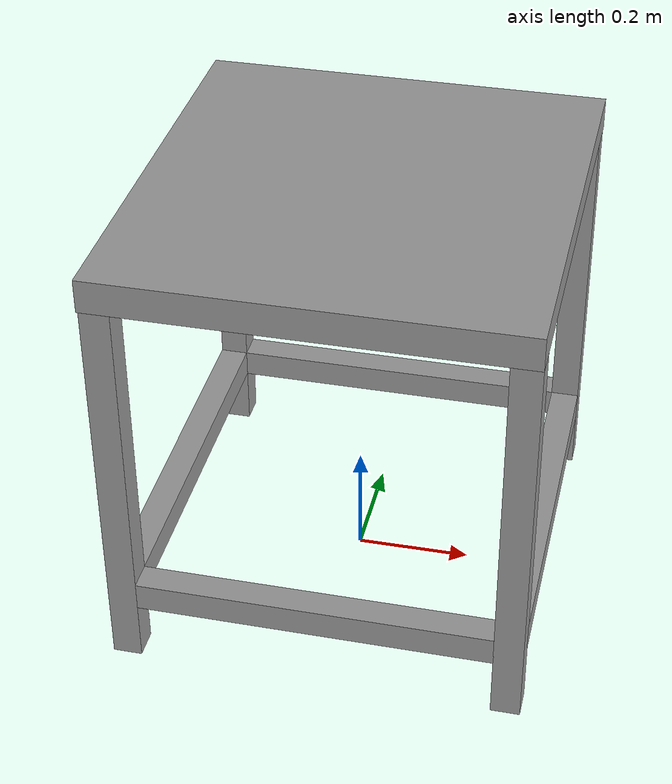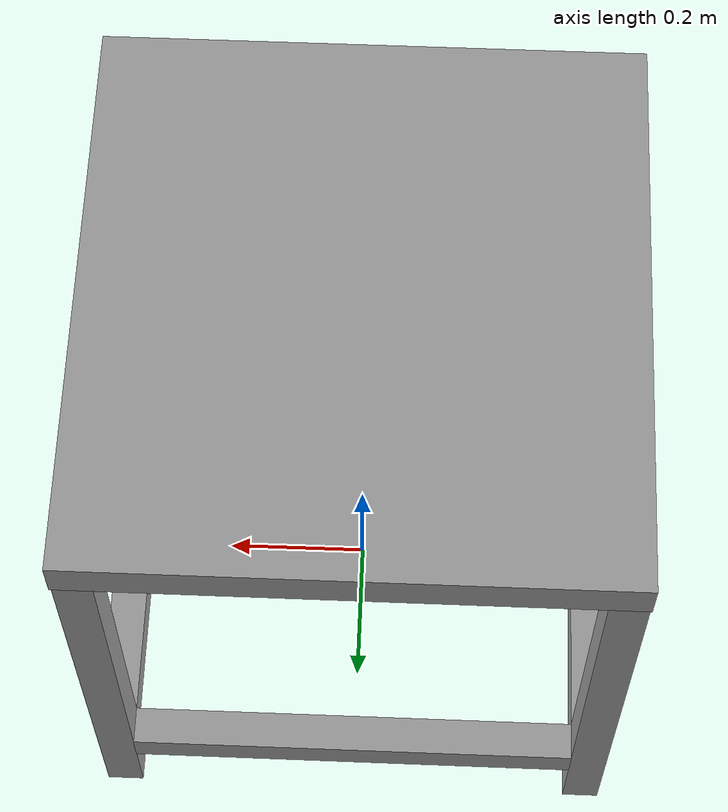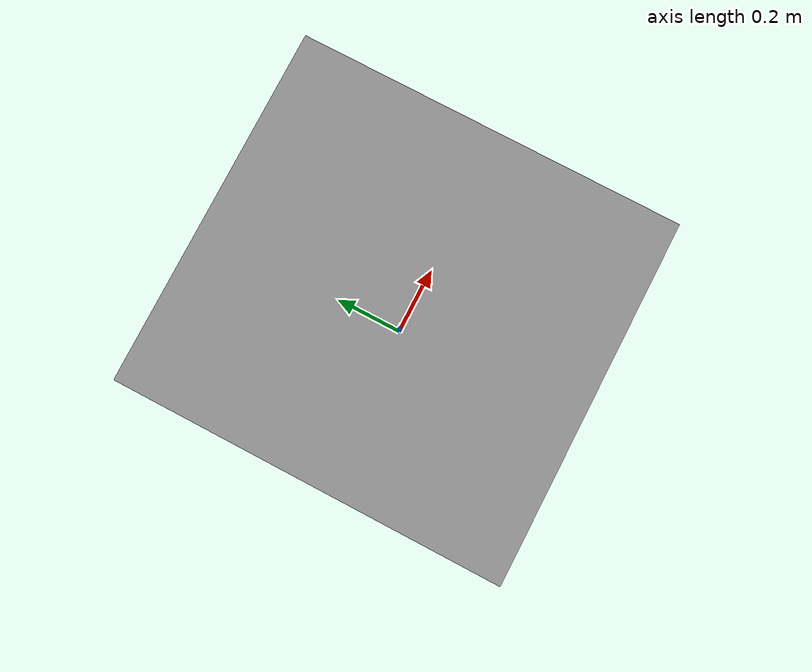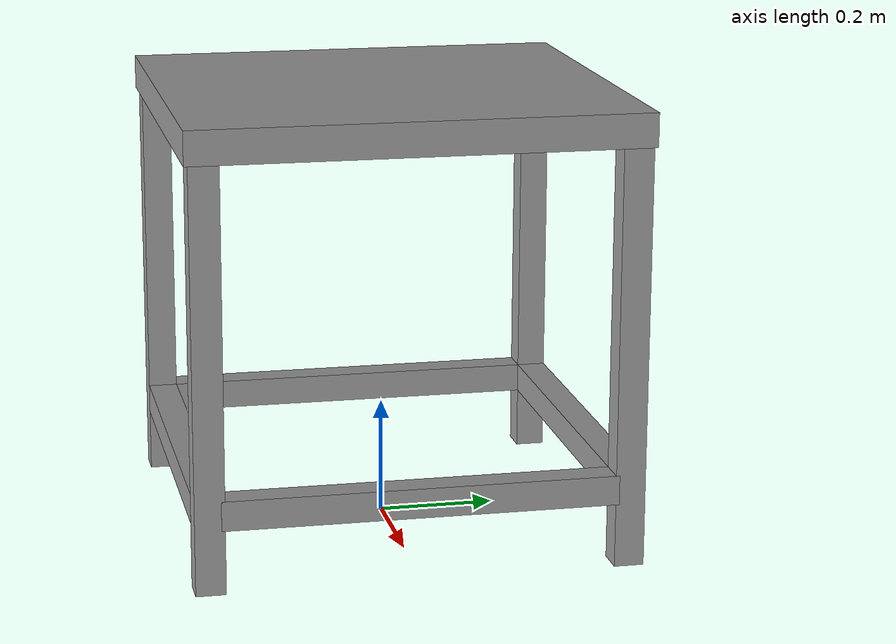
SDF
<?xml version='1.0'?>
<sdf version='1.6'>
  <model name='extra_heavy_duty_table'>
    <link name='link'>
      <pose frame=''>0 0 0 0 -0 0</pose>
      <inertial>
        <mass>0.00004</mass>
        <pose frame=''>0 0 0 0 -0 0</pose>
        <inertia>
          <ixx>5.177409</ixx>
          <ixy>0</ixy>
          <ixz>0</ixz>
          <iyy>4.843753753</iyy>
          <iyz>0</iyz>
          <izz>4.843753753</izz>
        </inertia>
      </inertial>
      <self_collide>0</self_collide>
      <kinematic>0</kinematic>
      <visual name='back_right_leg'>
        <pose frame=''>-0.33 -0.35 0.381 0 -0 0</pose>
        <geometry>
          <box>
            <size>0.05 0.05 0.762</size>
          </box>
        </geometry>
        <material>
          <script>
            <uri>file://media/materials/scripts/gazebo.material</uri>
            <name>Gazebo/Grey</name>
          </script>
          <ambient>0.3 0.3 0.3 1</ambient>
          <diffuse>0.7 0.7 0.7 1</diffuse>
          <specular>0.01 0.01 0.01 1</specular>
          <emissive>0 0 0 1</emissive>
          <shader type='vertex'>
            <normal_map>__default__</normal_map>
          </shader>
        </material>
        <cast_shadows>1</cast_shadows>
        <transparency>0</transparency>
      </visual>
      <visual name='front_left_leg'>
        <pose frame=''>0.33 0.35 0.381 0 -0 0</pose>
        <geometry>
          <box>
            <size>0.05 0.05 0.762</size>
          </box>
        </geometry>
        <material>
          <script>
            <uri>file://media/materials/scripts/gazebo.material</uri>
            <name>Gazebo/Grey</name>
          </script>
          <ambient>0.3 0.3 0.3 1</ambient>
          <diffuse>0.7 0.7 0.7 1</diffuse>
          <specular>0.01 0.01 0.01 1</specular>
          <emissive>0 0 0 1</emissive>
          <shader type='vertex'>
            <normal_map>__default__</normal_map>
          </shader>
        </material>
        <cast_shadows>1</cast_shadows>
        <transparency>0</transparency>
      </visual>
      <visual name='left_crossbar'>
        <pose frame=''>0.33 0 0.13335 0 -0 0</pose>
        <geometry>
          <box>
            <size>0.05 0.662 0.05</size>
          </box>
        </geometry>
        <material>
          <script>
            <uri>file://media/materials/scripts/gazebo.material</uri>
            <name>Gazebo/Grey</name>
          </script>
          <ambient>0.3 0.3 0.3 1</ambient>
          <diffuse>0.7 0.7 0.7 1</diffuse>
          <specular>0.01 0.01 0.01 1</specular>
          <emissive>0 0 0 1</emissive>
          <shader type='vertex'>
            <normal_map>__default__</normal_map>
          </shader>
        </material>
        <cast_shadows>1</cast_shadows>
        <transparency>0</transparency>
      </visual>
      <visual name='right_crossbar'>
        <pose frame=''>-0.33 0 0.13335 0 -0 0</pose>
        <geometry>
          <box>
            <size>0.05 0.662 0.05</size>
          </box>
        </geometry>
        <material>
          <script>
            <uri>file://media/materials/scripts/gazebo.material</uri>
            <name>Gazebo/Grey</name>
          </script>
          <ambient>0.3 0.3 0.3 1</ambient>
          <diffuse>0.7 0.7 0.7 1</diffuse>
          <specular>0.01 0.01 0.01 1</specular>
          <emissive>0 0 0 1</emissive>
          <shader type='vertex'>
            <normal_map>__default__</normal_map>
          </shader>
        </material>
        <cast_shadows>1</cast_shadows>
        <transparency>0</transparency>
      </visual>
      <visual name='back_left_leg'>
        <pose frame=''>-0.33 0.35 0.381 0 -0 0</pose>
        <geometry>
          <box>
            <size>0.05 0.05 0.762</size>
          </box>
        </geometry>
        <material>
          <script>
            <uri>file://media/materials/scripts/gazebo.material</uri>
            <name>Gazebo/Grey</name>
          </script>
          <ambient>0.3 0.3 0.3 1</ambient>
          <diffuse>0.7 0.7 0.7 1</diffuse>
          <specular>0.01 0.01 0.01 1</specular>
          <emissive>0 0 0 1</emissive>
          <shader type='vertex'>
            <normal_map>__default__</normal_map>
          </shader>
        </material>
        <cast_shadows>1</cast_shadows>
        <transparency>0</transparency>
      </visual>
      <visual name='front_right_leg'>
        <pose frame=''>0.33 -0.35 0.381 0 -0 0</pose>
        <geometry>
          <box>
            <size>0.05 0.05 0.762</size>
          </box>
        </geometry>
        <material>
          <script>
            <uri>file://media/materials/scripts/gazebo.material</uri>
            <name>Gazebo/Grey</name>
          </script>
          <ambient>0.3 0.3 0.3 1</ambient>
          <diffuse>0.7 0.7 0.7 1</diffuse>
          <specular>0.01 0.01 0.01 1</specular>
          <emissive>0 0 0 1</emissive>
          <shader type='vertex'>
            <normal_map>__default__</normal_map>
          </shader>
        </material>
        <cast_shadows>1</cast_shadows>
        <transparency>0</transparency>
      </visual>
      <visual name='back_crossbar'>
        <pose frame=''>0 0.35 0.13335 0 -0 0</pose>
        <geometry>
          <box>
            <size>0.6112 0.05 0.05</size>
          </box>
        </geometry>
        <material>
          <script>
            <uri>file://media/materials/scripts/gazebo.material</uri>
            <name>Gazebo/Grey</name>
          </script>
          <ambient>0.3 0.3 0.3 1</ambient>
          <diffuse>0.7 0.7 0.7 1</diffuse>
          <specular>0.01 0.01 0.01 1</specular>
          <emissive>0 0 0 1</emissive>
          <shader type='vertex'>
            <normal_map>__default__</normal_map>
          </shader>
        </material>
        <cast_shadows>1</cast_shadows>
        <transparency>0</transparency>
      </visual>
      <visual name='front_crossbar'>
        <pose frame=''>0 -0.35 0.13335 0 -0 0</pose>
        <geometry>
          <box>
            <size>0.6112 0.05 0.05</size>
          </box>
        </geometry>
        <material>
          <script>
            <uri>file://media/materials/scripts/gazebo.material</uri>
            <name>Gazebo/Grey</name>
          </script>
          <ambient>0.3 0.3 0.3 1</ambient>
          <diffuse>0.7 0.7 0.7 1</diffuse>
          <specular>0.01 0.01 0.01 1</specular>
          <emissive>0 0 0 1</emissive>
          <shader type='vertex'>
            <normal_map>__default__</normal_map>
          </shader>
        </material>
        <cast_shadows>1</cast_shadows>
        <transparency>0</transparency>
      </visual>
      <visual name='visual1'>
        <pose frame=''>0 0 0.736 0 -0 0</pose>
        <geometry>
          <box>
            <size>0.7112 0.762 0.057</size>
          </box>
        </geometry>
        <material>
          <script>
            <uri>file://media/materials/scripts/gazebo.material</uri>
            <name>Gazebo/Grey</name>
          </script>
          <ambient>0.3 0.3 0.3 1</ambient>
          <diffuse>0.7 0.7 0.7 1</diffuse>
          <specular>0.01 0.01 0.01 1</specular>
          <emissive>0 0 0 1</emissive>
          <shader type='vertex'>
            <normal_map>__default__</normal_map>
          </shader>
        </material>
        <cast_shadows>1</cast_shadows>
        <transparency>0</transparency>
      </visual>
      <collision name='front_crossbar'>
        <laser_retro>0</laser_retro>
        <max_contacts>10</max_contacts>
        <pose frame=''>0 -0.35 0.13335 0 -0 0</pose>
        <geometry>
          <box>
            <size>0.6112 0.05 0.05</size>
          </box>
        </geometry>
        <surface>
          <friction>
            <ode>
              <mu>1</mu>
              <mu2>1</mu2>
              <fdir1>0 0 0</fdir1>
              <slip1>0</slip1>
              <slip2>0</slip2>
            </ode>
            <torsional>
              <coefficient>1</coefficient>
              <patch_radius>0</patch_radius>
              <surface_radius>0</surface_radius>
              <use_patch_radius>1</use_patch_radius>
              <ode>
                <slip>0</slip>
              </ode>
            </torsional>
          </friction>
          <bounce>
            <restitution_coefficient>0</restitution_coefficient>
            <threshold>1e+06</threshold>
          </bounce>
          <contact>
            <collide_without_contact>0</collide_without_contact>
            <collide_without_contact_bitmask>1</collide_without_contact_bitmask>
            <collide_bitmask>1</collide_bitmask>
            <ode>
              <soft_cfm>0</soft_cfm>
              <soft_erp>0.2</soft_erp>
              <kp>1e+13</kp>
              <kd>1</kd>
              <max_vel>0.01</max_vel>
              <min_depth>0</min_depth>
            </ode>
            <bullet>
              <split_impulse>1</split_impulse>
              <split_impulse_penetration_threshold>-0.01</split_impulse_penetration_threshold>
              <soft_cfm>0</soft_cfm>
              <soft_erp>0.2</soft_erp>
              <kp>1e+13</kp>
              <kd>1</kd>
            </bullet>
          </contact>
        </surface>
      </collision>
      <collision name='back_crossbar'>
        <laser_retro>0</laser_retro>
        <max_contacts>10</max_contacts>
        <pose frame=''>0 0.35 0.13335 0 -0 0</pose>
        <geometry>
          <box>
            <size>0.6112 0.05 0.05</size>
          </box>
        </geometry>
        <surface>
          <friction>
            <ode>
              <mu>1</mu>
              <mu2>1</mu2>
              <fdir1>0 0 0</fdir1>
              <slip1>0</slip1>
              <slip2>0</slip2>
            </ode>
            <torsional>
              <coefficient>1</coefficient>
              <patch_radius>0</patch_radius>
              <surface_radius>0</surface_radius>
              <use_patch_radius>1</use_patch_radius>
              <ode>
                <slip>0</slip>
              </ode>
            </torsional>
          </friction>
          <bounce>
            <restitution_coefficient>0</restitution_coefficient>
            <threshold>1e+06</threshold>
          </bounce>
          <contact>
            <collide_without_contact>0</collide_without_contact>
            <collide_without_contact_bitmask>1</collide_without_contact_bitmask>
            <collide_bitmask>1</collide_bitmask>
            <ode>
              <soft_cfm>0</soft_cfm>
              <soft_erp>0.2</soft_erp>
              <kp>1e+13</kp>
              <kd>1</kd>
              <max_vel>0.01</max_vel>
              <min_depth>0</min_depth>
            </ode>
            <bullet>
              <split_impulse>1</split_impulse>
              <split_impulse_penetration_threshold>-0.01</split_impulse_penetration_threshold>
              <soft_cfm>0</soft_cfm>
              <soft_erp>0.2</soft_erp>
              <kp>1e+13</kp>
              <kd>1</kd>
            </bullet>
          </contact>
        </surface>
      </collision>
      <collision name='left_crossbar'>
        <laser_retro>0</laser_retro>
        <max_contacts>10</max_contacts>
        <pose frame=''>0.33 0 0.13335 0 -0 0</pose>
        <geometry>
          <box>
            <size>0.05 0.662 0.05</size>
          </box>
        </geometry>
        <surface>
          <friction>
            <ode>
              <mu>1</mu>
              <mu2>1</mu2>
              <fdir1>0 0 0</fdir1>
              <slip1>0</slip1>
              <slip2>0</slip2>
            </ode>
            <torsional>
              <coefficient>1</coefficient>
              <patch_radius>0</patch_radius>
              <surface_radius>0</surface_radius>
              <use_patch_radius>1</use_patch_radius>
              <ode>
                <slip>0</slip>
              </ode>
            </torsional>
          </friction>
          <bounce>
            <restitution_coefficient>0</restitution_coefficient>
            <threshold>1e+06</threshold>
          </bounce>
          <contact>
            <collide_without_contact>0</collide_without_contact>
            <collide_without_contact_bitmask>1</collide_without_contact_bitmask>
            <collide_bitmask>1</collide_bitmask>
            <ode>
              <soft_cfm>0</soft_cfm>
              <soft_erp>0.2</soft_erp>
              <kp>1e+13</kp>
              <kd>1</kd>
              <max_vel>0.01</max_vel>
              <min_depth>0</min_depth>
            </ode>
            <bullet>
              <split_impulse>1</split_impulse>
              <split_impulse_penetration_threshold>-0.01</split_impulse_penetration_threshold>
              <soft_cfm>0</soft_cfm>
              <soft_erp>0.2</soft_erp>
              <kp>1e+13</kp>
              <kd>1</kd>
            </bullet>
          </contact>
        </surface>
      </collision>
      <collision name='right_crossbar'>
        <laser_retro>0</laser_retro>
        <max_contacts>10</max_contacts>
        <pose frame=''>-0.33 0 0.13335 0 -0 0</pose>
        <geometry>
          <box>
            <size>0.05 0.662 0.05</size>
          </box>
        </geometry>
        <surface>
          <friction>
            <ode>
              <mu>1</mu>
              <mu2>1</mu2>
              <fdir1>0 0 0</fdir1>
              <slip1>0</slip1>
              <slip2>0</slip2>
            </ode>
            <torsional>
              <coefficient>1</coefficient>
              <patch_radius>0</patch_radius>
              <surface_radius>0</surface_radius>
              <use_patch_radius>1</use_patch_radius>
              <ode>
                <slip>0</slip>
              </ode>
            </torsional>
          </friction>
          <bounce>
            <restitution_coefficient>0</restitution_coefficient>
            <threshold>1e+06</threshold>
          </bounce>
          <contact>
            <collide_without_contact>0</collide_without_contact>
            <collide_without_contact_bitmask>1</collide_without_contact_bitmask>
            <collide_bitmask>1</collide_bitmask>
            <ode>
              <soft_cfm>0</soft_cfm>
              <soft_erp>0.2</soft_erp>
              <kp>1e+13</kp>
              <kd>1</kd>
              <max_vel>0.01</max_vel>
              <min_depth>0</min_depth>
            </ode>
            <bullet>
              <split_impulse>1</split_impulse>
              <split_impulse_penetration_threshold>-0.01</split_impulse_penetration_threshold>
              <soft_cfm>0</soft_cfm>
              <soft_erp>0.2</soft_erp>
              <kp>1e+13</kp>
              <kd>1</kd>
            </bullet>
          </contact>
        </surface>
      </collision>
      <collision name='back_right_leg'>
        <laser_retro>0</laser_retro>
        <max_contacts>10</max_contacts>
        <pose frame=''>-0.33 -0.35 0.381 0 -0 0</pose>
        <geometry>
          <box>
            <size>0.05 0.05 0.762</size>
          </box>
        </geometry>
        <surface>
          <friction>
            <ode>
              <mu>1</mu>
              <mu2>1</mu2>
              <fdir1>0 0 0</fdir1>
              <slip1>0</slip1>
              <slip2>0</slip2>
            </ode>
            <torsional>
              <coefficient>1</coefficient>
              <patch_radius>0</patch_radius>
              <surface_radius>0</surface_radius>
              <use_patch_radius>1</use_patch_radius>
              <ode>
                <slip>0</slip>
              </ode>
            </torsional>
          </friction>
          <bounce>
            <restitution_coefficient>0</restitution_coefficient>
            <threshold>1e+06</threshold>
          </bounce>
          <contact>
            <collide_without_contact>0</collide_without_contact>
            <collide_without_contact_bitmask>1</collide_without_contact_bitmask>
            <collide_bitmask>1</collide_bitmask>
            <ode>
              <soft_cfm>0</soft_cfm>
              <soft_erp>0.2</soft_erp>
              <kp>1e+13</kp>
              <kd>1</kd>
              <max_vel>0.01</max_vel>
              <min_depth>0</min_depth>
            </ode>
            <bullet>
              <split_impulse>1</split_impulse>
              <split_impulse_penetration_threshold>-0.01</split_impulse_penetration_threshold>
              <soft_cfm>0</soft_cfm>
              <soft_erp>0.2</soft_erp>
              <kp>1e+13</kp>
              <kd>1</kd>
            </bullet>
          </contact>
        </surface>
      </collision>
      <collision name='front_left_leg'>
        <laser_retro>0</laser_retro>
        <max_contacts>10</max_contacts>
        <pose frame=''>0.33 0.35 0.381 0 -0 0</pose>
        <geometry>
          <box>
            <size>0.05 0.05 0.762</size>
          </box>
        </geometry>
        <surface>
          <friction>
            <ode>
              <mu>1</mu>
              <mu2>1</mu2>
              <fdir1>0 0 0</fdir1>
              <slip1>0</slip1>
              <slip2>0</slip2>
            </ode>
            <torsional>
              <coefficient>1</coefficient>
              <patch_radius>0</patch_radius>
              <surface_radius>0</surface_radius>
              <use_patch_radius>1</use_patch_radius>
              <ode>
                <slip>0</slip>
              </ode>
            </torsional>
          </friction>
          <bounce>
            <restitution_coefficient>0</restitution_coefficient>
            <threshold>1e+06</threshold>
          </bounce>
          <contact>
            <collide_without_contact>0</collide_without_contact>
            <collide_without_contact_bitmask>1</collide_without_contact_bitmask>
            <collide_bitmask>1</collide_bitmask>
            <ode>
              <soft_cfm>0</soft_cfm>
              <soft_erp>0.2</soft_erp>
              <kp>1e+13</kp>
              <kd>1</kd>
              <max_vel>0.01</max_vel>
              <min_depth>0</min_depth>
            </ode>
            <bullet>
              <split_impulse>1</split_impulse>
              <split_impulse_penetration_threshold>-0.01</split_impulse_penetration_threshold>
              <soft_cfm>0</soft_cfm>
              <soft_erp>0.2</soft_erp>
              <kp>1e+13</kp>
              <kd>1</kd>
            </bullet>
          </contact>
        </surface>
      </collision>
      <collision name='back_left_leg'>
        <laser_retro>0</laser_retro>
        <max_contacts>10</max_contacts>
        <pose frame=''>-0.33 0.35 0.381 0 -0 0</pose>
        <geometry>
          <box>
            <size>0.05 0.05 0.762</size>
          </box>
        </geometry>
        <surface>
          <friction>
            <ode>
              <mu>1</mu>
              <mu2>1</mu2>
              <fdir1>0 0 0</fdir1>
              <slip1>0</slip1>
              <slip2>0</slip2>
            </ode>
            <torsional>
              <coefficient>1</coefficient>
              <patch_radius>0</patch_radius>
              <surface_radius>0</surface_radius>
              <use_patch_radius>1</use_patch_radius>
              <ode>
                <slip>0</slip>
              </ode>
            </torsional>
          </friction>
          <bounce>
            <restitution_coefficient>0</restitution_coefficient>
            <threshold>1e+06</threshold>
          </bounce>
          <contact>
            <collide_without_contact>0</collide_without_contact>
            <collide_without_contact_bitmask>1</collide_without_contact_bitmask>
            <collide_bitmask>1</collide_bitmask>
            <ode>
              <soft_cfm>0</soft_cfm>
              <soft_erp>0.2</soft_erp>
              <kp>1e+13</kp>
              <kd>1</kd>
              <max_vel>0.01</max_vel>
              <min_depth>0</min_depth>
            </ode>
            <bullet>
              <split_impulse>1</split_impulse>
              <split_impulse_penetration_threshold>-0.01</split_impulse_penetration_threshold>
              <soft_cfm>0</soft_cfm>
              <soft_erp>0.2</soft_erp>
              <kp>1e+13</kp>
              <kd>1</kd>
            </bullet>
          </contact>
        </surface>
      </collision>
      <collision name='front_right_leg'>
        <laser_retro>0</laser_retro>
        <max_contacts>10</max_contacts>
        <pose frame=''>0.33 -0.35 0.381 0 -0 0</pose>
        <geometry>
          <box>
            <size>0.05 0.05 0.762</size>
          </box>
        </geometry>
        <surface>
          <friction>
            <ode>
              <mu>1</mu>
              <mu2>1</mu2>
              <fdir1>0 0 0</fdir1>
              <slip1>0</slip1>
              <slip2>0</slip2>
            </ode>
            <torsional>
              <coefficient>1</coefficient>
              <patch_radius>0</patch_radius>
              <surface_radius>0</surface_radius>
              <use_patch_radius>1</use_patch_radius>
              <ode>
                <slip>0</slip>
              </ode>
            </torsional>
          </friction>
          <bounce>
            <restitution_coefficient>0</restitution_coefficient>
            <threshold>1e+06</threshold>
          </bounce>
          <contact>
            <collide_without_contact>0</collide_without_contact>
            <collide_without_contact_bitmask>1</collide_without_contact_bitmask>
            <collide_bitmask>1</collide_bitmask>
            <ode>
              <soft_cfm>0</soft_cfm>
              <soft_erp>0.2</soft_erp>
              <kp>1e+13</kp>
              <kd>1</kd>
              <max_vel>0.01</max_vel>
              <min_depth>0</min_depth>
            </ode>
            <bullet>
              <split_impulse>1</split_impulse>
              <split_impulse_penetration_threshold>-0.01</split_impulse_penetration_threshold>
              <soft_cfm>0</soft_cfm>
              <soft_erp>0.2</soft_erp>
              <kp>1e+13</kp>
              <kd>1</kd>
            </bullet>
          </contact>
        </surface>
      </collision>
      <collision name='surface'>
        <laser_retro>0</laser_retro>
        <max_contacts>10</max_contacts>
        <pose frame=''>0 0 0.736 0 -0 0</pose>
        <geometry>
          <box>
            <size>0.7112 0.762 0.057</size>
          </box>
        </geometry>
        <surface>
          <friction>
            <ode>
              <mu>0.6</mu>
              <mu2>0.6</mu2>
              <fdir1>0 0 0</fdir1>
              <slip1>0</slip1>
              <slip2>0</slip2>
            </ode>
            <torsional>
              <coefficient>1</coefficient>
              <patch_radius>0</patch_radius>
              <surface_radius>0</surface_radius>
              <use_patch_radius>1</use_patch_radius>
              <ode>
                <slip>0</slip>
              </ode>
            </torsional>
          </friction>
          <bounce>
            <restitution_coefficient>0</restitution_coefficient>
            <threshold>1e+06</threshold>
          </bounce>
          <contact>
            <collide_without_contact>0</collide_without_contact>
            <collide_without_contact_bitmask>1</collide_without_contact_bitmask>
            <collide_bitmask>1</collide_bitmask>
            <ode>
              <soft_cfm>0</soft_cfm>
              <soft_erp>0.2</soft_erp>
              <kp>1e+13</kp>
              <kd>1</kd>
              <max_vel>0.01</max_vel>
              <min_depth>0</min_depth>
            </ode>
            <bullet>
              <split_impulse>1</split_impulse>
              <split_impulse_penetration_threshold>-0.01</split_impulse_penetration_threshold>
              <soft_cfm>0</soft_cfm>
              <soft_erp>0.2</soft_erp>
              <kp>1e+13</kp>
              <kd>1</kd>
            </bullet>
          </contact>
        </surface>
      </collision>
    </link>
    <static>1</static>
    <allow_auto_disable>1</allow_auto_disable>
  </model>
</sdf>
